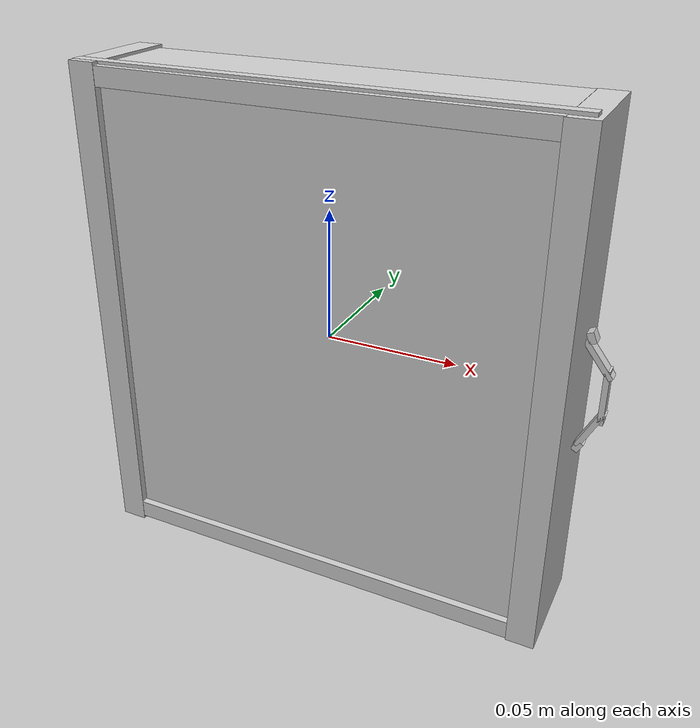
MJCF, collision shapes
<mujoco model="drawer_middle">
  <asset>
  <texture file="template.png" name="tex-drawer_middle" type="2d" />
  <material name="drawer_middle" reflectance="0.5" texrepeat="1 1" texture="tex-drawer_middle" texuniform="false" />
  <mesh file="visual/drawer_middle_vis.msh" name="drawer_middle_vis" scale="0.05 0.05 0.05" /></asset>
  <worldbody>
    <body>
      <body name="object">
      <geom solimp="0.998 0.998 0.001" solref="0.001 1" density="100" friction="0.95 0.3 0.1" type="mesh" mesh="drawer_middle_vis" conaffinity="0" contype="0" group="1" material="drawer_middle" /><geom solimp="0.998 0.998 0.001" solref="0.001 1" density="100" friction="0.95 0.3 0.1" type="box" pos="0.08831 -0.00108 -0.00000" quat="0.00000 0.00000 1.00000 0.00000" size="0.00529 0.02070 0.09650" group="0" rgba="0.8 0.8 0.8 0.3" /><geom solimp="0.998 0.998 0.001" solref="0.001 1" density="100" friction="0.95 0.3 0.1" type="box" pos="-0.08595 -0.00108 -0.00000" quat="0.00000 0.00000 1.00000 0.00000" size="0.00529 0.02036 0.09775" group="0" rgba="0.8 0.8 0.8 0.3" /><geom solimp="0.998 0.998 0.001" solref="0.001 1" density="100" friction="0.95 0.3 0.1" type="box" pos="-0.00000 -0.01632 -0.00000" quat="0.00000 0.70711 0.70711 0.00000" size="0.00223 0.09178 0.09777" group="0" rgba="0.8 0.8 0.8 0.3" /><geom solimp="0.998 0.998 0.001" solref="0.001 1" density="100" friction="0.95 0.3 0.1" type="box" pos="0.00129 -0.00162 -0.09253" quat="0.70711 0.00000 0.70711 0.00000" size="0.00363 0.01977 0.08233" group="0" rgba="0.8 0.8 0.8 0.3" /><geom solimp="0.998 0.998 0.001" solref="0.001 1" density="100" friction="0.95 0.3 0.1" type="box" pos="0.10191 0.00202 0.00000" quat="0.00000 0.00000 1.00000 0.00000" size="0.00102 0.00228 0.01031" group="0" rgba="0.8 0.8 0.8 0.3" /><geom solimp="0.998 0.998 0.001" solref="0.001 1" density="100" friction="0.95 0.3 0.1" type="box" pos="0.09880 0.00202 -0.01341" quat="0.23506 0.00000 -0.97198 -0.00000" size="0.00104 0.00228 0.00806" group="0" rgba="0.8 0.8 0.8 0.3" /><geom solimp="0.998 0.998 0.001" solref="0.001 1" density="100" friction="0.95 0.3 0.1" type="box" pos="0.09833 0.00202 0.01356" quat="0.32083 -0.00000 0.94714 -0.00000" size="0.00104 0.00228 0.00806" group="0" rgba="0.8 0.8 0.8 0.3" /><geom solimp="0.998 0.998 0.001" solref="0.001 1" density="100" friction="0.95 0.3 0.1" type="box" pos="0.09537 0.00202 0.02104" quat="0.14192 -0.14192 0.69272 0.69272" size="0.00129 0.00203 0.00228" group="0" rgba="0.8 0.8 0.8 0.3" /><geom solimp="0.998 0.998 0.001" solref="0.001 1" density="100" friction="0.95 0.3 0.1" type="box" pos="0.09552 0.00202 -0.02089" quat="0.68385 0.68385 0.17987 -0.17987" size="0.00129 0.00203 0.00228" group="0" rgba="0.8 0.8 0.8 0.3" /><geom solimp="0.998 0.998 0.001" solref="0.001 1" density="100" friction="0.95 0.3 0.1" type="box" pos="0.00129 -0.00162 0.09299" quat="0.70711 0.00000 0.70711 0.00000" size="0.00363 0.01977 0.08233" group="0" rgba="0.8 0.8 0.8 0.3" /></body>
      <site rgba="0 0 0 0" size="0.005" pos="0 0 -0.0240" name="bottom_site" />
      <site rgba="0 0 0 0" size="0.005" pos="0 0 0.04" name="top_site" />
      <site rgba="0 0 0 0" size="0.005" pos="0.025 0.025 0" name="horizontal_radius_site" />
    </body>
  </worldbody>
</mujoco>
